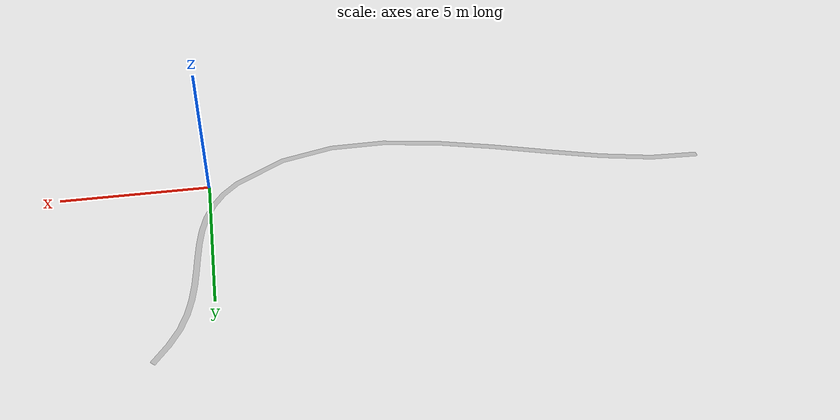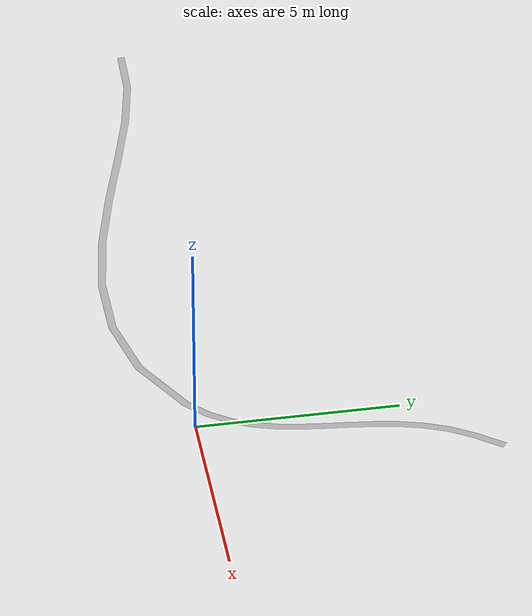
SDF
<?xml version="1.0"?>
<sdf version="1.5">
    <model name="road1_1">
        <static>true</static>
        <link name="link">
            <collision name="collision">
                <pose>0 0 0 0 0 0</pose>
                <geometry>
                    <mesh>
                        <uri>model://road1_1/meshes/road1_1.dae</uri>
                    </mesh>
                </geometry>
            </collision>
            <visual name="visual">
              <pose>0 0 0 0 0 0</pose>
              <geometry>
              <mesh>
                 <uri>model://road1_1/meshes/road1_1.dae</uri>
              </mesh>
              </geometry>
             </visual>
        </link>
    </model>
</sdf>
